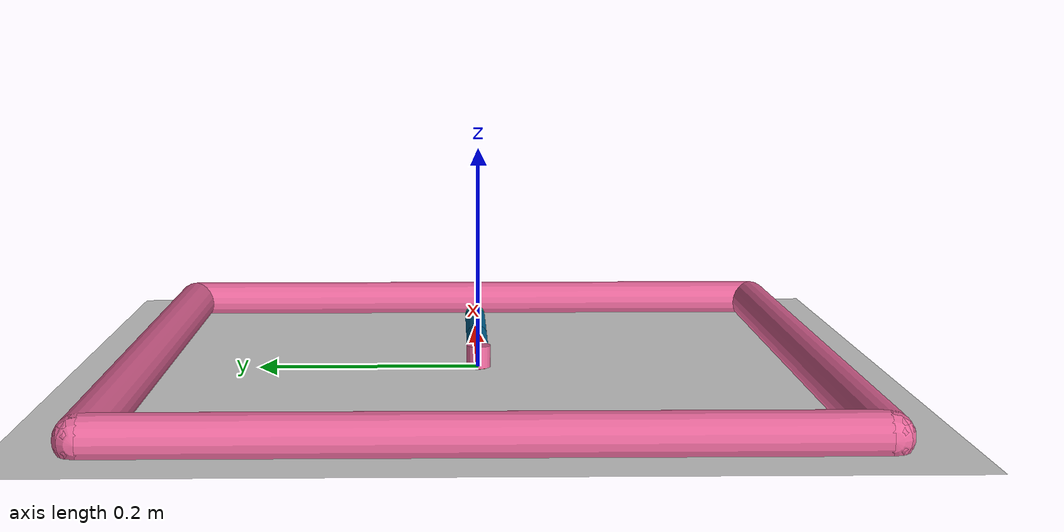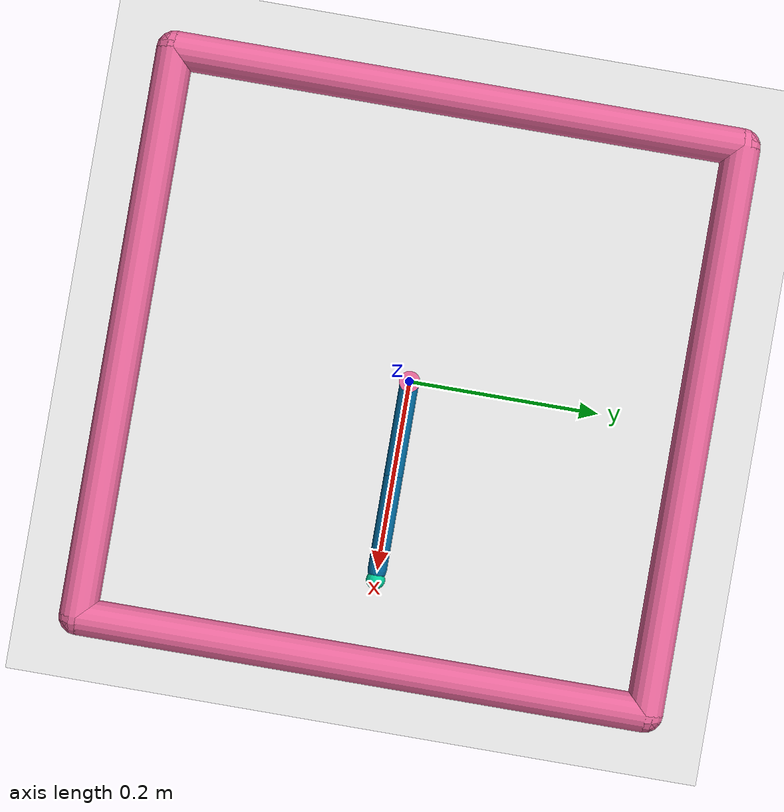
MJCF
<mujoco model="reacher">
	<compiler angle="radian" inertiafromgeom="true"/>
	<default>
		<joint armature="1" damping="1" limited="true"/>
		<geom contype="0" friction="1 0.1 0.1" rgba="0.7 0.7 0 1"/>
	</default>
	<option gravity="0 0 -9.81" integrator="RK4" timestep="0.01"/>
	<worldbody>
		<!-- Arena -->
		<geom conaffinity="0" contype="0" name="ground" pos="0 0 0" rgba="0.9 0.9 0.9 1" size="1 1 10" type="plane"/>
		<geom conaffinity="0" fromto="-.3 -.3 .01 .3 -.3 .01" name="sideS" rgba="0.9 0.4 0.6 1" size=".02" type="capsule"/>
		<geom conaffinity="0" fromto=" .3 -.3 .01 .3  .3 .01" name="sideE" rgba="0.9 0.4 0.6 1" size=".02" type="capsule"/>
		<geom conaffinity="0" fromto="-.3  .3 .01 .3  .3 .01" name="sideN" rgba="0.9 0.4 0.6 1" size=".02" type="capsule"/>
		<geom conaffinity="0" fromto="-.3 -.3 .01 -.3 .3 .01" name="sideW" rgba="0.9 0.4 0.6 1" size=".02" type="capsule"/>
		<!-- Arm -->
		<geom conaffinity="0" contype="0" fromto="0 0 0 0 0 0.02" name="root" rgba="0.9 0.4 0.6 1" size=".011" type="cylinder"/>
		<body name="robot:body0" pos="0 0 .01">
			<geom fromto="0 0 0 0.1 0 0" name="link0" rgba="0.0 0.4 0.6 1" size=".01" type="capsule"/>
			<joint axis="0 0 1" limited="false" name="robot:joint0" pos="0 0 0" type="hinge"/>
			<body name="robot:body1" pos="0.1 0 0">
				<joint axis="0 0 1" limited="true" name="robot:joint1" pos="0 0 0" range="-3.0 3.0" type="hinge"/>
				<geom fromto="0 0 0 0.1 0 0" name="link1" rgba="0.0 0.4 0.6 1" size=".01" type="capsule"/>
				<body name="robot:fingertip" pos="0.11 0 0">
					<geom contype="0" name="fingertip" pos="0 0 0" rgba="0.0 0.8 0.6 1" size=".01" type="sphere"/>
				</body>
			</body>
		</body>
		<!-- Target -->

			<site name="target" pos="0 0 0" rgba="0.9 0.2 0.2 1" size=".009" type="sphere"/>

	</worldbody>
	<actuator>

		<position gear="1" ctrllimited="true" ctrlrange="-1.72 1.72" joint="robot:joint0"/>
		<position gear="1" ctrllimited="true" ctrlrange="-1.72 1.72" joint="robot:joint1"/>

	</actuator>
</mujoco>
